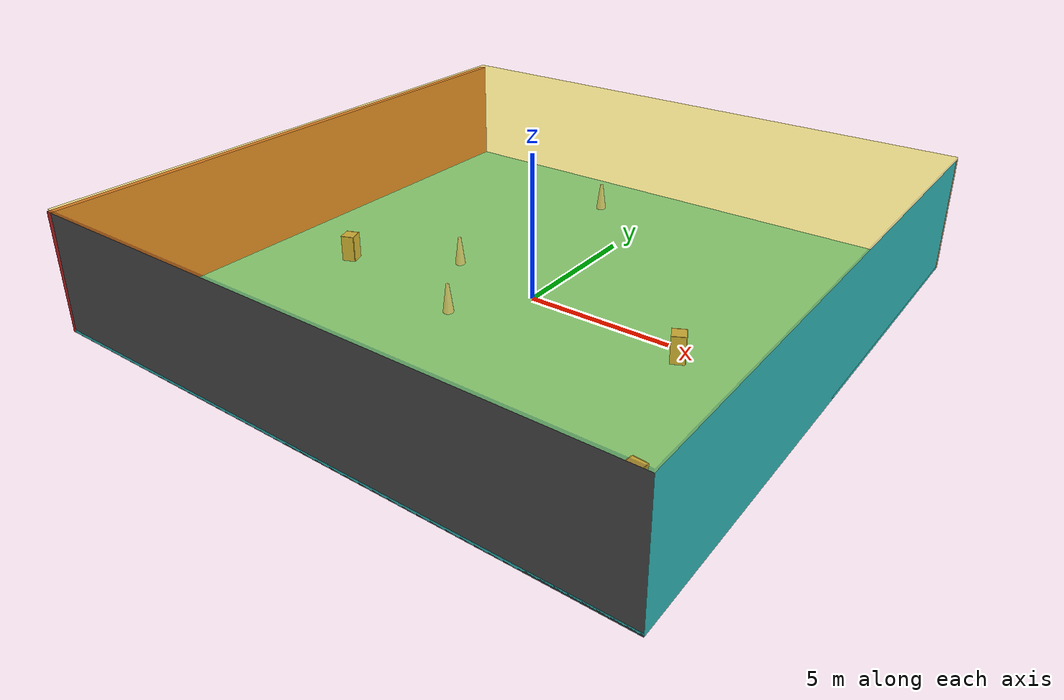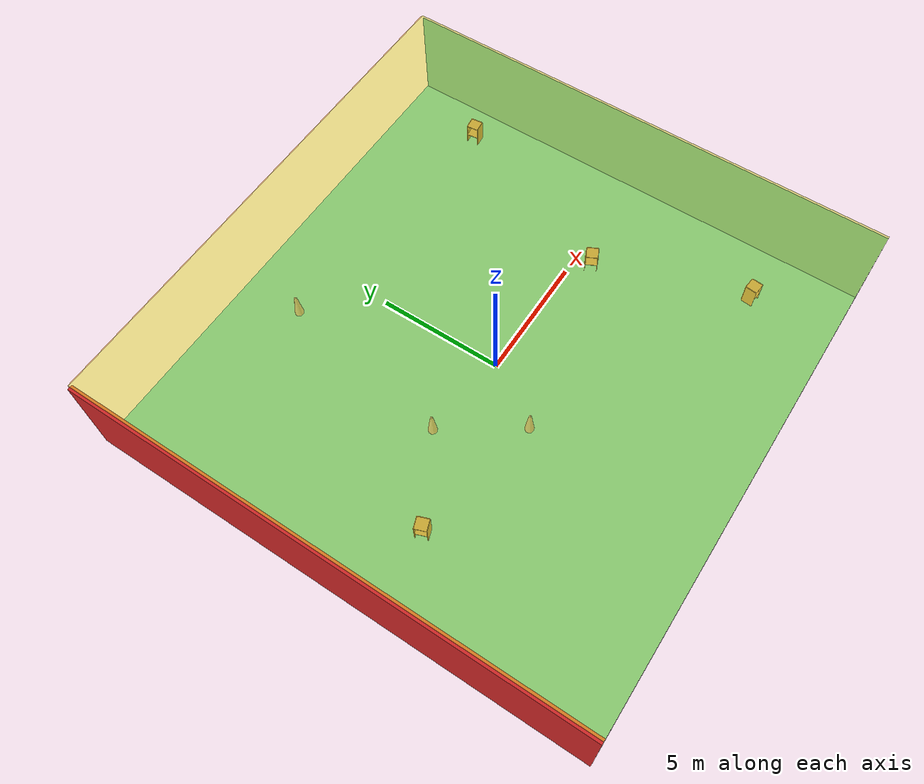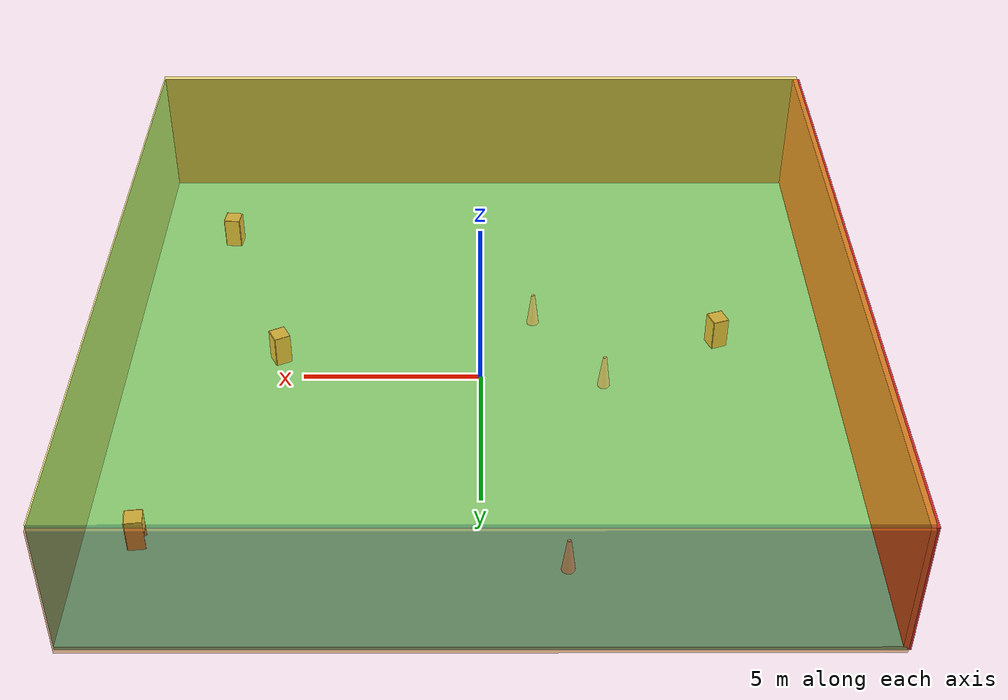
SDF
<sdf version="1.4">
 <world name="default">
  <physics type="ode">
   <max_step_size>0.001</max_step_size>
   <real_time_factor>1</real_time_factor>
   <real_time_update_rate>1000</real_time_update_rate>
   <gravity>0 0 -9.8</gravity>
  </physics>
  <scene><ambient>0.4 0.4 0.4 1</ambient><background>0.7 0.7 0.7 1</background><shadows>1</shadows></scene>
  <model name="Surrounding">
   <static>1</static>
   <link name="Ceiling">
    <collision name="Ceiling_Collision"><geometry><box><size>20 20 0.1</size></box></geometry></collision>
    <visual name="Ceiling_Visual">
     <geometry><box><size>20 20 0.1</size></box></geometry>
     <material>
      <script>
       <uri>file://media/materials/scripts/gazebo.material</uri>
       <name>Gazebo/YellowTransparent</name>
      </script>
     </material>
    </visual>
    <pose>0 0 4.05 0 0 0</pose>
   </link>
   <link name="Wall_South">
    <collision name="Wall_South_Collision">
     <geometry><box><size>20 0 4</size></box></geometry>
     <pose>0 0 2 0 -0 0</pose>
    </collision>
    <visual name="Wall_South_Visual">
     <pose>0 0 2 0 -0 0</pose>
     <geometry><box><size>20 0 4</size></box></geometry>
     <material>
      <script><uri>file://media/materials/scripts/gazebo.material</uri><name>Gazebo/Road</name></script>
     </material>
    </visual>
    <velocity_decay><linear>0</linear><angular>0</angular></velocity_decay>
    <pose>0 -10 0 0 -0 0</pose>
   </link>
   <link name="Wall_East">
    <collision name="Wall_21_Collision">
     <geometry><box><size>20 0 4</size></box></geometry>
     <pose>0 0 2 0 -0 0</pose>
    </collision>
    <visual name="Wall_21_Visual">
     <pose>0 0 2 0 -0 0</pose>
     <geometry><box><size>20 0 4</size></box></geometry>
     <material>
      <script>
       <uri>file://media/materials/scripts/gazebo.material</uri>
       <name>Gazebo/TurquoiseGlowOutline</name>
      </script>
     </material>
    </visual>
    <velocity_decay><linear>0</linear><angular>0</angular></velocity_decay>
    <pose>10 0 0 0 -0 1.5708</pose>
   </link>
   <link name="Wall_North">
    <collision name="Wall_22_Collision">
     <geometry><box><size>20 0.2 4</size></box></geometry>
     <pose>0 0 2 0 -0 0</pose>
    </collision>
    <visual name="Wall_22_Visual">
     <pose>0 0 2 0 -0 0</pose>
     <geometry><box><size>20 0.2 4</size></box></geometry>
     <material>
      <script>
       <uri>file://media/materials/scripts/gazebo.material</uri>
       <name>Gazebo/OrangeTransparent</name>
      </script>
     </material>
    </visual>
    <velocity_decay><linear>0</linear><angular>0</angular></velocity_decay>
    <pose>0 10 0 0 -0 0</pose>
   </link>
   <link name="Wall_West">
    <collision name="Wall_23_Collision">
     <geometry><box><size>20 0.2 4</size></box></geometry>
     <pose>0 0 2 0 -0 0</pose>
    </collision>
    <visual name="Wall_23_Visual">
     <pose>0 0 2 0 -0 0</pose>
     <geometry><box><size>20 0.2 4</size></box></geometry>
     <material>
      <script><uri>file://media/materials/scripts/gazebo.material</uri><name>Gazebo/RedGlow</name></script>
     </material>
    </visual>
    <velocity_decay><linear>0</linear><angular>0</angular></velocity_decay>
    <pose>-10 0 0 0 0 -1.5708</pose>
   </link>
   <link name="Ground_link">
    <collision name="collision">
     <pose>0 0 .05 0 -0 0</pose>
     <geometry><box><size>20 20 0.1</size></box></geometry>
    </collision>
    <visual name="visual">
     <pose>0 0 .05 0 -0 0</pose>
     <geometry><box><size>20 20 0.1</size></box></geometry>
     <material>
      <script>
       <uri>file://media/materials/scripts/gazebo.material</uri>
       <name>Gazebo/TurquoiseGlowOutline</name>
      </script>
     </material>
    </visual>
   </link>
   <static>1</static>
  </model>
  <spherical_coordinates>
   <surface_model>EARTH_WGS84</surface_model>
   <latitude_deg>0</latitude_deg>
   <longitude_deg>0</longitude_deg>
   <elevation>0</elevation>
   <heading_deg>0</heading_deg>
  </spherical_coordinates>
  <light name="lightball_0" type="diffuse">
   <diffuse>0.8 0.8 0.8 1</diffuse>
   <specular>0.2 0.2 0.2 1</specular>
   <attenuation>
    <range>100</range>
    <constant>0.7</constant>
    <linear>0.01</linear>
    <quadratic>0.001</quadratic>
   </attenuation>
   <direction>-0.5 0.1 -0.9</direction>
   <pose>-7.13606406582 -0.15712766143 3.42969900274 0 0 0</pose>
  </light>
  <light name="lightball_1" type="diffuse">
   <diffuse>0.8 0.8 0.8 1</diffuse>
   <specular>0.2 0.2 0.2 1</specular>
   <attenuation>
    <range>100</range>
    <constant>0.7</constant>
    <linear>0.01</linear>
    <quadratic>0.001</quadratic>
   </attenuation>
   <direction>-0.5 0.1 -0.9</direction>
   <pose>1.62834132837 7.68192965003 1.50093499773 0 0 0</pose>
  </light>
  <light name="lightball_2" type="diffuse">
   <diffuse>0.8 0.8 0.8 1</diffuse>
   <specular>0.2 0.2 0.2 1</specular>
   <attenuation>
    <range>100</range>
    <constant>0.7</constant>
    <linear>0.01</linear>
    <quadratic>0.001</quadratic>
   </attenuation>
   <direction>-0.5 0.1 -0.9</direction>
   <pose>-0.439923031066 3.11339295185 3.67925450488 0 0 0</pose>
  </light>
  <include><uri>model://cabinet</uri><pose>-6.80519036572 -1.47672054927 0 0 0 0.345729370565</pose></include>
  <include>
   <uri>model://construction_cone</uri>
   <pose>-3.44609513403 0.44893359857 0 0 0 1.83513559988</pose>
  </include>
  <include>
   <uri>model://construction_cone</uri>
   <pose>-1.52605946278 -2.42592892058 0 0 0 2.83357565637</pose>
  </include>
  <include>
   <uri>model://construction_cone</uri>
   <pose>-2.15673345903 7.51642700895 0 0 0 2.63992820188</pose>
  </include>
  <include><uri>model://cabinet</uri><pose>5.69722225634 -0.721788738 0 0 0 0.463783234704</pose></include>
  <include><uri>model://cabinet</uri><pose>7.71689757147 -6.60627763348 0 0 0 1.465689271</pose></include>
  <include><uri>model://cabinet</uri><pose>8.59435274258 6.61591409752 0 0 0 0.119997352223</pose></include>
 </world>
</sdf>

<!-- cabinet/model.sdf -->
<sdf version="1.5">
  <model name="cabinet">
    <static>true</static>
    <link name="cabinet_bottom_plate">
      <inertial>
        <pose>0 0 -1 0 0 0</pose>
        <inertia>
          <ixx>2.050000</ixx>
          <ixy>0</ixy>
          <ixz>0</ixz>
          <iyy>2.050000</iyy>
          <iyz>0</iyz>
          <izz>2.050000</izz>
        </inertia>
        <mass>25.000000</mass>
      </inertial>
      <collision name="cabinet_bottom_plate_geom">
        <pose>0 0 0.010000 0 0 0</pose>
        <geometry>
          <box>
            <size>0.450000 0.450000 0.020000</size>
          </box>
        </geometry>
      </collision>
      <visual name="cabinet_bottom_plate_geom_visual">
        <pose>0 0 0.010000 0 0 0</pose>
        <geometry>
          <box>
            <size>0.450000 0.450000 0.020000</size>
          </box>
        </geometry>
        <material>
          <script>
            <uri>model://media/materials/scripts/gazebo.material</uri>
            <name>Gazebo/Wood</name>
          </script>
        </material>
      </visual>
      <collision name="cabinet_bottom_plate_geom_cabinet_back_plate">
        <pose>0.235000 0 0.510000 0 0 0</pose>
        <geometry>
          <box>
            <size>0.020000 0.450000 1.020000</size>
          </box>
        </geometry>
      </collision>
      <visual name="cabinet_bottom_plate_geom_cabinet_back_plate_visual">
        <pose>0.235000 0 0.510000 0 0 0</pose>
        <geometry>
          <box>
            <size>0.020000 0.450000 1.020000</size>
          </box>
        </geometry>
        <material>
          <script>
            <uri>model://media/materials/scripts/gazebo.material</uri>
            <name>Gazebo/Wood</name>
          </script>
        </material>
      </visual>
      <collision name="cabinet_bottom_plate_geom_cabinet_left_plate">
        <pose>0 0.235000 0.510000 0 0 0</pose>
        <geometry>
          <box>
            <size>0.450000 0.020000 1.020000</size>
          </box>
        </geometry>
      </collision>
      <visual name="cabinet_bottom_plate_geom_cabinet_left_plate_visual">
        <pose>0 0.235000 0.510000 0 0 0</pose>
        <geometry>
          <box>
            <size>0.450000 0.020000 1.020000</size>
          </box>
        </geometry>
        <material>
          <script>
            <uri>model://media/materials/scripts/gazebo.material</uri>
            <name>Gazebo/Wood</name>
          </script>
        </material>
      </visual>
      <collision name="cabinet_bottom_plate_geom_cabinet_middle_plate">
        <pose>0 0 0.510000 0 0 0</pose>
        <geometry>
          <box>
            <size>0.450000 0.450000 0.020000</size>
          </box>
        </geometry>
      </collision>
      <visual name="cabinet_bottom_plate_geom_cabinet_middle_plate_visual">
        <pose>0 0 0.510000 0 0 0</pose>
        <geometry>
          <box>
            <size>0.450000 0.450000 0.020000</size>
          </box>
        </geometry>
        <material>
          <script>
            <uri>model://media/materials/scripts/gazebo.material</uri>
            <name>Gazebo/Wood</name>
          </script>
        </material>
      </visual>
      <collision name="cabinet_bottom_plate_geom_cabinet_right_plate">
        <pose>0 -0.235000 0.510000 0 0 0</pose>
        <geometry>
          <box>
            <size>0.450000 0.020000 1.020000</size>
          </box>
        </geometry>
      </collision>
      <visual name="cabinet_bottom_plate_geom_cabinet_right_plate_visual">
        <pose>0 -0.235000 0.510000 0 0 0</pose>
        <geometry>
          <box>
            <size>0.450000 0.020000 1.020000</size>
          </box>
        </geometry>
        <material>
          <script>
            <uri>model://media/materials/scripts/gazebo.material</uri>
            <name>Gazebo/Wood</name>
          </script>
        </material>
      </visual>
      <collision name="cabinet_bottom_plate_geom_cabinet_top_plate">
        <pose>0 0 1.010000 0 0 0</pose>
        <geometry>
          <box>
            <size>0.450000 0.450000 0.020000</size>
          </box>
        </geometry>
      </collision>
      <visual name="cabinet_bottom_plate_geom_cabinet_top_plate_visual">
        <pose>0 0 1.010000 0 0 0</pose>
        <geometry>
          <box>
            <size>0.450000 0.450000 0.020000</size>
          </box>
        </geometry>
        <material>
          <script>
            <uri>model://media/materials/scripts/gazebo.material</uri>
            <name>Gazebo/Wood</name>
          </script>
        </material>
      </visual>
    </link>
  </model>
</sdf>

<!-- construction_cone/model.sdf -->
<sdf version="1.5">
  <model name="Construction Cone">
    <link name="link">
      <collision name="collision">
        <geometry>
          <mesh>
            <scale>10 10 10</scale>
            <uri>file://isr-testbed/construction_cone/meshes/construction_cone.dae</uri>
          </mesh>
        </geometry>
      </collision>
      <visual name="visual">
        <geometry>
          <mesh>
            <scale>10 10 10</scale>
            <uri>file://isr-testbed/construction_cone/meshes/construction_cone.dae</uri>
          </mesh>
        </geometry>
      </visual>
    </link>
  </model>
</sdf>
